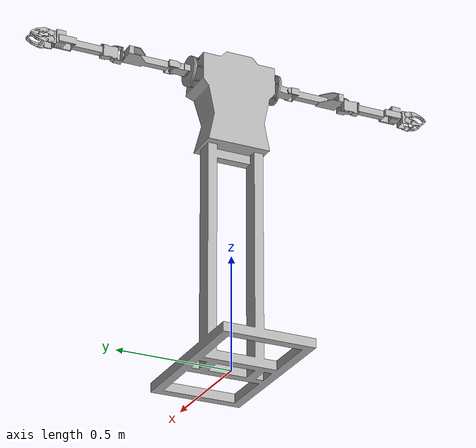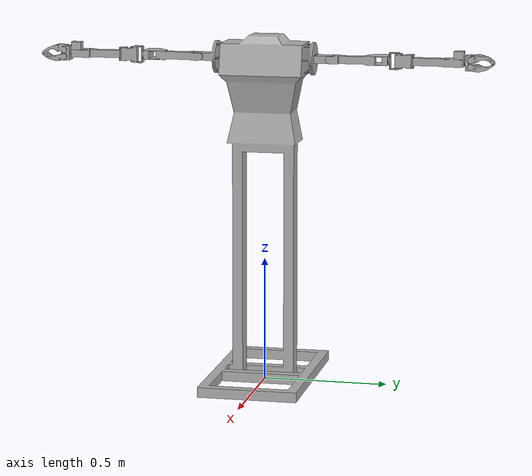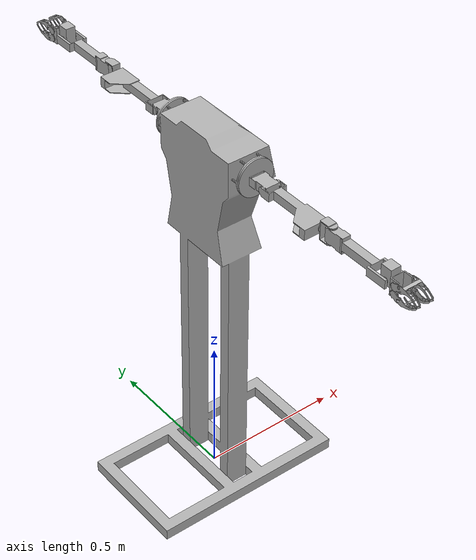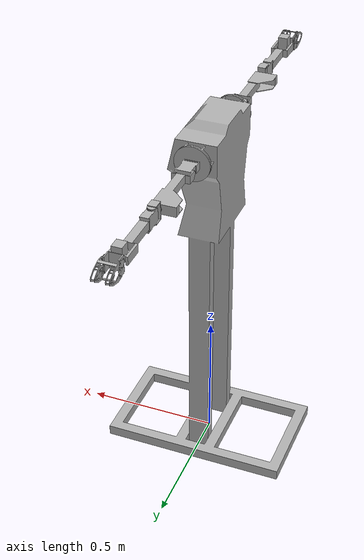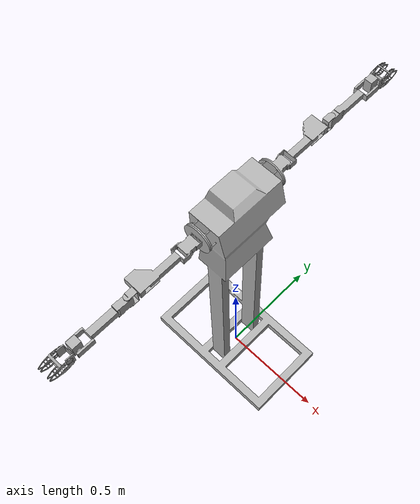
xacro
<?xml version="1.0" ?>
<robot name="Robot_v4" xmlns:xacro="http://www.ros.org/wiki/xacro">

<xacro:include filename="$(find Robot_v4_description)/urdf/materials.xacro" />
<xacro:include filename="$(find Robot_v4_description)/urdf/Robot_v4.trans" />
<xacro:include filename="$(find Robot_v4_description)/urdf/Robot_v4.gazebo" />
<link name="base_link">
  <inertial>
    <origin xyz="0.00017793668988113744 5.533452281433415e-18 0.8689085940658481" rpy="0 0 0"/>
    <mass value="224.71501051023168"/>
    <inertia ixx="55.39019" iyy="55.047659" izz="4.206946" ixy="0.0" iyz="0.0" ixz="-0.066429"/>
  </inertial>
  <visual>
    <origin xyz="0 0 0" rpy="0 0 0"/>
    <geometry>
      <mesh filename="package://Robot_v4_description/meshes/base_link.stl" scale="0.001 0.001 0.001"/>
    </geometry>
    <material name="silver"/>
  </visual>
  <collision>
    <origin xyz="0 0 0" rpy="0 0 0"/>
    <geometry>
      <mesh filename="package://Robot_v4_description/meshes/base_link.stl" scale="0.001 0.001 0.001"/>
    </geometry>
  </collision>
</link>

<link name="left_shoulder_1">
  <inertial>
    <origin xyz="-3.9898639947466563e-17 0.02733088208948492 2.220446049250313e-16" rpy="0 0 0"/>
    <mass value="1.4666981122291527"/>
    <inertia ixx="0.001727" iyy="0.001578" izz="0.00186" ixy="0.0" iyz="0.0" ixz="0.0"/>
  </inertial>
  <visual>
    <origin xyz="0.0015 -0.1965 -1.317" rpy="0 0 0"/>
    <geometry>
      <mesh filename="package://Robot_v4_description/meshes/left_shoulder_1.stl" scale="0.001 0.001 0.001"/>
    </geometry>
    <material name="silver"/>
  </visual>
  <collision>
    <origin xyz="0.0015 -0.1965 -1.317" rpy="0 0 0"/>
    <geometry>
      <mesh filename="package://Robot_v4_description/meshes/left_shoulder_1.stl" scale="0.001 0.001 0.001"/>
    </geometry>
  </collision>
</link>

<link name="left_upper_arm_1">
  <inertial>
    <origin xyz="-0.008260426712845945 0.14307055921586953 2.220446049250313e-16" rpy="0 0 0"/>
    <mass value="1.9288762922196252"/>
    <inertia ixx="0.008968" iyy="0.001022" izz="0.009575" ixy="0.001101" iyz="0.0" ixz="0.0"/>
  </inertial>
  <visual>
    <origin xyz="0.0015 -0.2645 -1.317" rpy="0 0 0"/>
    <geometry>
      <mesh filename="package://Robot_v4_description/meshes/left_upper_arm_1.stl" scale="0.001 0.001 0.001"/>
    </geometry>
    <material name="silver"/>
  </visual>
  <collision>
    <origin xyz="0.0015 -0.2645 -1.317" rpy="0 0 0"/>
    <geometry>
      <mesh filename="package://Robot_v4_description/meshes/left_upper_arm_1.stl" scale="0.001 0.001 0.001"/>
    </geometry>
  </collision>
</link>

<link name="left_elbow_1">
  <inertial>
    <origin xyz="9.065469729063746e-14 0.017967251502734316 2.220446049250313e-16" rpy="0 0 0"/>
    <mass value="0.1439040422196271"/>
    <inertia ixx="0.000129" iyy="0.000104" izz="4.5e-05" ixy="0.0" iyz="-0.0" ixz="0.0"/>
  </inertial>
  <visual>
    <origin xyz="0.0015 -0.4995 -1.317" rpy="0 0 0"/>
    <geometry>
      <mesh filename="package://Robot_v4_description/meshes/left_elbow_1.stl" scale="0.001 0.001 0.001"/>
    </geometry>
    <material name="silver"/>
  </visual>
  <collision>
    <origin xyz="0.0015 -0.4995 -1.317" rpy="0 0 0"/>
    <geometry>
      <mesh filename="package://Robot_v4_description/meshes/left_elbow_1.stl" scale="0.001 0.001 0.001"/>
    </geometry>
  </collision>
</link>

<link name="left_forearm_1">
  <inertial>
    <origin xyz="-7.892991815694472e-17 0.09502500346990628 0.0" rpy="0 0 0"/>
    <mass value="2.0132130797778944"/>
    <inertia ixx="0.0117" iyy="0.000662" izz="0.0118" ixy="0.0" iyz="0.0" ixz="-0.0"/>
  </inertial>
  <visual>
    <origin xyz="0.0015 -0.5385 -1.317" rpy="0 0 0"/>
    <geometry>
      <mesh filename="package://Robot_v4_description/meshes/left_forearm_1.stl" scale="0.001 0.001 0.001"/>
    </geometry>
    <material name="silver"/>
  </visual>
  <collision>
    <origin xyz="0.0015 -0.5385 -1.317" rpy="0 0 0"/>
    <geometry>
      <mesh filename="package://Robot_v4_description/meshes/left_forearm_1.stl" scale="0.001 0.001 0.001"/>
    </geometry>
  </collision>
</link>

<link name="left_wrist_1">
  <inertial>
    <origin xyz="-5.578003337003423e-15 0.00022630011389290772 0.014473720665364898" rpy="0 0 0"/>
    <mass value="0.7029015023306802"/>
    <inertia ixx="0.000304" iyy="0.00029" izz="0.000174" ixy="0.0" iyz="2e-06" ixz="-0.0"/>
  </inertial>
  <visual>
    <origin xyz="0.0015 -0.7785 -1.317" rpy="0 0 0"/>
    <geometry>
      <mesh filename="package://Robot_v4_description/meshes/left_wrist_1.stl" scale="0.001 0.001 0.001"/>
    </geometry>
    <material name="silver"/>
  </visual>
  <collision>
    <origin xyz="0.0015 -0.7785 -1.317" rpy="0 0 0"/>
    <geometry>
      <mesh filename="package://Robot_v4_description/meshes/left_wrist_1.stl" scale="0.001 0.001 0.001"/>
    </geometry>
  </collision>
</link>

<link name="left_hand_1">
  <inertial>
    <origin xyz="4.231641079210924e-14 0.01581253510869285 -6.661338147750939e-16" rpy="0 0 0"/>
    <mass value="0.1824609520976122"/>
    <inertia ixx="7e-05" iyy="0.000135" izz="0.000108" ixy="0.0" iyz="0.0" ixz="-0.0"/>
  </inertial>
  <visual>
    <origin xyz="0.0015 -0.8015 -1.317" rpy="0 0 0"/>
    <geometry>
      <mesh filename="package://Robot_v4_description/meshes/left_hand_1.stl" scale="0.001 0.001 0.001"/>
    </geometry>
    <material name="silver"/>
  </visual>
  <collision>
    <origin xyz="0.0015 -0.8015 -1.317" rpy="0 0 0"/>
    <geometry>
      <mesh filename="package://Robot_v4_description/meshes/left_hand_1.stl" scale="0.001 0.001 0.001"/>
    </geometry>
  </collision>
</link>

<link name="left_upper_clamp_1">
  <inertial>
    <origin xyz="-4.2934406030425976e-17 0.03139159595926877 0.0037177697824435363" rpy="0 0 0"/>
    <mass value="0.07927921862621877"/>
    <inertia ixx="6.1e-05" iyy="6e-05" izz="0.000112" ixy="0.0" iyz="-0.0" ixz="0.0"/>
  </inertial>
  <visual>
    <origin xyz="0.0015 -0.8265 -1.331" rpy="0 0 0"/>
    <geometry>
      <mesh filename="package://Robot_v4_description/meshes/left_upper_clamp_1.stl" scale="0.001 0.001 0.001"/>
    </geometry>
    <material name="silver"/>
  </visual>
  <collision>
    <origin xyz="0.0015 -0.8265 -1.331" rpy="0 0 0"/>
    <geometry>
      <mesh filename="package://Robot_v4_description/meshes/left_upper_clamp_1.stl" scale="0.001 0.001 0.001"/>
    </geometry>
  </collision>
</link>

<link name="left_lower_clamp_1">
  <inertial>
    <origin xyz="-9.627715291671279e-17 0.030933117132007526 -0.004855790878325772" rpy="0 0 0"/>
    <mass value="0.07734674619028087"/>
    <inertia ixx="5.9e-05" iyy="5.8e-05" izz="0.000109" ixy="-0.0" iyz="2e-06" ixz="-0.0"/>
  </inertial>
  <visual>
    <origin xyz="0.0015 -0.8265 -1.303" rpy="0 0 0"/>
    <geometry>
      <mesh filename="package://Robot_v4_description/meshes/left_lower_clamp_1.stl" scale="0.001 0.001 0.001"/>
    </geometry>
    <material name="silver"/>
  </visual>
  <collision>
    <origin xyz="0.0015 -0.8265 -1.303" rpy="0 0 0"/>
    <geometry>
      <mesh filename="package://Robot_v4_description/meshes/left_lower_clamp_1.stl" scale="0.001 0.001 0.001"/>
    </geometry>
  </collision>
</link>

<link name="right_shoulder_1">
  <inertial>
    <origin xyz="-3.968179951296946e-17 -0.02733088208948492 2.220446049250313e-16" rpy="0 0 0"/>
    <mass value="1.466698112229153"/>
    <inertia ixx="0.001727" iyy="0.001578" izz="0.00186" ixy="-0.0" iyz="0.0" ixz="-0.0"/>
  </inertial>
  <visual>
    <origin xyz="0.0015 0.1965 -1.317" rpy="0 0 0"/>
    <geometry>
      <mesh filename="package://Robot_v4_description/meshes/right_shoulder_1.stl" scale="0.001 0.001 0.001"/>
    </geometry>
    <material name="silver"/>
  </visual>
  <collision>
    <origin xyz="0.0015 0.1965 -1.317" rpy="0 0 0"/>
    <geometry>
      <mesh filename="package://Robot_v4_description/meshes/right_shoulder_1.stl" scale="0.001 0.001 0.001"/>
    </geometry>
  </collision>
</link>

<link name="right_upper_arm_1">
  <inertial>
    <origin xyz="-0.008260426712846007 -0.14307055921586959 2.220446049250313e-16" rpy="0 0 0"/>
    <mass value="1.928876292219625"/>
    <inertia ixx="0.008968" iyy="0.001022" izz="0.009575" ixy="-0.001101" iyz="-0.0" ixz="-0.0"/>
  </inertial>
  <visual>
    <origin xyz="0.0015 0.2645 -1.317" rpy="0 0 0"/>
    <geometry>
      <mesh filename="package://Robot_v4_description/meshes/right_upper_arm_1.stl" scale="0.001 0.001 0.001"/>
    </geometry>
    <material name="silver"/>
  </visual>
  <collision>
    <origin xyz="0.0015 0.2645 -1.317" rpy="0 0 0"/>
    <geometry>
      <mesh filename="package://Robot_v4_description/meshes/right_upper_arm_1.stl" scale="0.001 0.001 0.001"/>
    </geometry>
  </collision>
</link>

<link name="right_elbow_1">
  <inertial>
    <origin xyz="9.064125318369864e-14 -0.017967251502734316 2.220446049250313e-16" rpy="0 0 0"/>
    <mass value="0.14390404221962716"/>
    <inertia ixx="0.000129" iyy="0.000104" izz="4.5e-05" ixy="-0.0" iyz="0.0" ixz="0.0"/>
  </inertial>
  <visual>
    <origin xyz="0.0015 0.4995 -1.317" rpy="0 0 0"/>
    <geometry>
      <mesh filename="package://Robot_v4_description/meshes/right_elbow_1.stl" scale="0.001 0.001 0.001"/>
    </geometry>
    <material name="silver"/>
  </visual>
  <collision>
    <origin xyz="0.0015 0.4995 -1.317" rpy="0 0 0"/>
    <geometry>
      <mesh filename="package://Robot_v4_description/meshes/right_elbow_1.stl" scale="0.001 0.001 0.001"/>
    </geometry>
  </collision>
</link>

<link name="right_forearm_1">
  <inertial>
    <origin xyz="-8.348356728138384e-17 -0.09502500346990628 0.0" rpy="0 0 0"/>
    <mass value="2.013213079777894"/>
    <inertia ixx="0.0117" iyy="0.000662" izz="0.0118" ixy="0.0" iyz="0.0" ixz="0.0"/>
  </inertial>
  <visual>
    <origin xyz="0.0015 0.5385 -1.317" rpy="0 0 0"/>
    <geometry>
      <mesh filename="package://Robot_v4_description/meshes/right_forearm_1.stl" scale="0.001 0.001 0.001"/>
    </geometry>
    <material name="silver"/>
  </visual>
  <collision>
    <origin xyz="0.0015 0.5385 -1.317" rpy="0 0 0"/>
    <geometry>
      <mesh filename="package://Robot_v4_description/meshes/right_forearm_1.stl" scale="0.001 0.001 0.001"/>
    </geometry>
  </collision>
</link>

<link name="right_wrist_1">
  <inertial>
    <origin xyz="-5.578003337003423e-15 -0.00022630011389290772 0.014473720665364898" rpy="0 0 0"/>
    <mass value="0.7029015023306802"/>
    <inertia ixx="0.000304" iyy="0.00029" izz="0.000174" ixy="-0.0" iyz="-2e-06" ixz="-0.0"/>
  </inertial>
  <visual>
    <origin xyz="0.0015 0.7785 -1.317" rpy="0 0 0"/>
    <geometry>
      <mesh filename="package://Robot_v4_description/meshes/right_wrist_1.stl" scale="0.001 0.001 0.001"/>
    </geometry>
    <material name="silver"/>
  </visual>
  <collision>
    <origin xyz="0.0015 0.7785 -1.317" rpy="0 0 0"/>
    <geometry>
      <mesh filename="package://Robot_v4_description/meshes/right_wrist_1.stl" scale="0.001 0.001 0.001"/>
    </geometry>
  </collision>
</link>

<link name="right_hand_1">
  <inertial>
    <origin xyz="4.231641079210924e-14 -0.01581253510869285 -6.661338147750939e-16" rpy="0 0 0"/>
    <mass value="0.1824609520976122"/>
    <inertia ixx="7e-05" iyy="0.000135" izz="0.000108" ixy="-0.0" iyz="-0.0" ixz="-0.0"/>
  </inertial>
  <visual>
    <origin xyz="0.0015 0.8015 -1.317" rpy="0 0 0"/>
    <geometry>
      <mesh filename="package://Robot_v4_description/meshes/right_hand_1.stl" scale="0.001 0.001 0.001"/>
    </geometry>
    <material name="silver"/>
  </visual>
  <collision>
    <origin xyz="0.0015 0.8015 -1.317" rpy="0 0 0"/>
    <geometry>
      <mesh filename="package://Robot_v4_description/meshes/right_hand_1.stl" scale="0.001 0.001 0.001"/>
    </geometry>
  </collision>
</link>

<link name="right_upper_clamp_1">
  <inertial>
    <origin xyz="-5.702903427273753e-17 -0.031391595959269214 0.0037177697824435363" rpy="0 0 0"/>
    <mass value="0.07927921862621765"/>
    <inertia ixx="6.1e-05" iyy="6e-05" izz="0.000112" ixy="0.0" iyz="0.0" ixz="0.0"/>
  </inertial>
  <visual>
    <origin xyz="0.0015 0.8265 -1.331" rpy="0 0 0"/>
    <geometry>
      <mesh filename="package://Robot_v4_description/meshes/right_upper_clamp_1.stl" scale="0.001 0.001 0.001"/>
    </geometry>
    <material name="silver"/>
  </visual>
  <collision>
    <origin xyz="0.0015 0.8265 -1.331" rpy="0 0 0"/>
    <geometry>
      <mesh filename="package://Robot_v4_description/meshes/right_upper_clamp_1.stl" scale="0.001 0.001 0.001"/>
    </geometry>
  </collision>
</link>

<link name="right_lower_clamp_1">
  <inertial>
    <origin xyz="-5.659535340374333e-17 -0.030933117132007526 -0.004855790878325772" rpy="0 0 0"/>
    <mass value="0.07734674619028098"/>
    <inertia ixx="5.9e-05" iyy="5.8e-05" izz="0.000109" ixy="0.0" iyz="-2e-06" ixz="-0.0"/>
  </inertial>
  <visual>
    <origin xyz="0.0015 0.8265 -1.303" rpy="0 0 0"/>
    <geometry>
      <mesh filename="package://Robot_v4_description/meshes/right_lower_clamp_1.stl" scale="0.001 0.001 0.001"/>
    </geometry>
    <material name="silver"/>
  </visual>
  <collision>
    <origin xyz="0.0015 0.8265 -1.303" rpy="0 0 0"/>
    <geometry>
      <mesh filename="package://Robot_v4_description/meshes/right_lower_clamp_1.stl" scale="0.001 0.001 0.001"/>
    </geometry>
  </collision>
</link>

<joint name="LJ1" type="continuous">
  <origin xyz="-0.0015 0.1965 1.317" rpy="0 0 0"/>
  <parent link="base_link"/>
  <child link="left_shoulder_1"/>
  <axis xyz="-0.0 1.0 0.0"/>
</joint>

<joint name="LJ2" type="continuous">
  <origin xyz="0.0 0.068 0.0" rpy="0 0 0"/>
  <parent link="left_shoulder_1"/>
  <child link="left_upper_arm_1"/>
  <axis xyz="-1.0 -0.0 -0.0"/>
</joint>

<joint name="LJ3" type="continuous">
  <origin xyz="0.0 0.235 0.0" rpy="0 0 0"/>
  <parent link="left_upper_arm_1"/>
  <child link="left_elbow_1"/>
  <axis xyz="-0.0 1.0 0.0"/>
</joint>

<joint name="LJ4" type="continuous">
  <origin xyz="0.0 0.039 0.0" rpy="0 0 0"/>
  <parent link="left_elbow_1"/>
  <child link="left_forearm_1"/>
  <axis xyz="0.0 0.0 -1.0"/>
</joint>

<joint name="LJ5" type="continuous">
  <origin xyz="0.0 0.24 0.0" rpy="0 0 0"/>
  <parent link="left_forearm_1"/>
  <child link="left_wrist_1"/>
  <axis xyz="-1.0 0.0 0.0"/>
</joint>

<joint name="LJ6" type="continuous">
  <origin xyz="0.0 0.023 0.0" rpy="0 0 0"/>
  <parent link="left_wrist_1"/>
  <child link="left_hand_1"/>
  <axis xyz="0.0 1.0 0.0"/>
</joint>

<joint name="LJ7" type="continuous">
  <origin xyz="0.0 0.025 0.014" rpy="0 0 0"/>
  <parent link="left_hand_1"/>
  <child link="left_upper_clamp_1"/>
  <axis xyz="-1.0 0.0 0.0"/>
</joint>

<joint name="LJ8" type="continuous">
  <origin xyz="0.0 0.025 -0.014" rpy="0 0 0"/>
  <parent link="left_hand_1"/>
  <child link="left_lower_clamp_1"/>
  <axis xyz="-1.0 0.0 0.0"/>
</joint>

<joint name="RJ1" type="continuous">
  <origin xyz="-0.0015 -0.1965 1.317" rpy="0 0 0"/>
  <parent link="base_link"/>
  <child link="right_shoulder_1"/>
  <axis xyz="0.0 -1.0 0.0"/>
</joint>

<joint name="RJ2" type="continuous">
  <origin xyz="0.0 -0.068 0.0" rpy="0 0 0"/>
  <parent link="right_shoulder_1"/>
  <child link="right_upper_arm_1"/>
  <axis xyz="1.0 -0.0 0.0"/>
</joint>

<joint name="RJ3" type="continuous">
  <origin xyz="0.0 -0.235 0.0" rpy="0 0 0"/>
  <parent link="right_upper_arm_1"/>
  <child link="right_elbow_1"/>
  <axis xyz="-0.0 -1.0 0.0"/>
</joint>

<joint name="RJ4" type="continuous">
  <origin xyz="0.0 -0.039 0.0" rpy="0 0 0"/>
  <parent link="right_elbow_1"/>
  <child link="right_forearm_1"/>
  <axis xyz="0.0 -0.0 -1.0"/>
</joint>

<joint name="RJ5" type="continuous">
  <origin xyz="0.0 -0.24 0.0" rpy="0 0 0"/>
  <parent link="right_forearm_1"/>
  <child link="right_wrist_1"/>
  <axis xyz="1.0 0.0 0.0"/>
</joint>

<joint name="RJ6" type="continuous">
  <origin xyz="0.0 -0.023 0.0" rpy="0 0 0"/>
  <parent link="right_wrist_1"/>
  <child link="right_hand_1"/>
  <axis xyz="0.0 -1.0 0.0"/>
</joint>

<joint name="RJ7" type="continuous">
  <origin xyz="0.0 -0.025 0.014" rpy="0 0 0"/>
  <parent link="right_hand_1"/>
  <child link="right_upper_clamp_1"/>
  <axis xyz="1.0 0.0 0.0"/>
</joint>

<joint name="RJ8" type="continuous">
  <origin xyz="0.0 -0.025 -0.014" rpy="0 0 0"/>
  <parent link="right_hand_1"/>
  <child link="right_lower_clamp_1"/>
  <axis xyz="1.0 0.0 0.0"/>
</joint>

</robot>

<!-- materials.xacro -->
<robot name="Robot_v4" xmlns:xacro="http://www.ros.org/wiki/xacro" >

<material name="silver">
  <color rgba="0.700 0.700 0.700 1.000"/>
</material>

</robot>

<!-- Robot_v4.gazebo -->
<robot name="Robot_v4" xmlns:xacro="http://www.ros.org/wiki/xacro" >

<xacro:property name="body_color" value="Gazebo/Silver" />

<gazebo>
  <plugin name="control" filename="libgazebo_ros_control.so"/>
</gazebo>
<gazebo reference="base_link">
  <material>${body_color}</material>
  <mu1>0.2</mu1>
  <mu2>0.2</mu2>
  <selfCollide>true</selfCollide>
  <gravity>true</gravity>
</gazebo>

<gazebo reference="left_shoulder_1">
  <material>${body_color}</material>
  <mu1>0.2</mu1>
  <mu2>0.2</mu2>
  <selfCollide>true</selfCollide>
</gazebo>

<gazebo reference="left_upper_arm_1">
  <material>${body_color}</material>
  <mu1>0.2</mu1>
  <mu2>0.2</mu2>
  <selfCollide>true</selfCollide>
</gazebo>

<gazebo reference="left_elbow_1">
  <material>${body_color}</material>
  <mu1>0.2</mu1>
  <mu2>0.2</mu2>
  <selfCollide>true</selfCollide>
</gazebo>

<gazebo reference="left_forearm_1">
  <material>${body_color}</material>
  <mu1>0.2</mu1>
  <mu2>0.2</mu2>
  <selfCollide>true</selfCollide>
</gazebo>

<gazebo reference="left_wrist_1">
  <material>${body_color}</material>
  <mu1>0.2</mu1>
  <mu2>0.2</mu2>
  <selfCollide>true</selfCollide>
</gazebo>

<gazebo reference="left_hand_1">
  <material>${body_color}</material>
  <mu1>0.2</mu1>
  <mu2>0.2</mu2>
  <selfCollide>true</selfCollide>
</gazebo>

<gazebo reference="left_upper_clamp_1">
  <material>${body_color}</material>
  <mu1>0.2</mu1>
  <mu2>0.2</mu2>
  <selfCollide>true</selfCollide>
</gazebo>

<gazebo reference="left_lower_clamp_1">
  <material>${body_color}</material>
  <mu1>0.2</mu1>
  <mu2>0.2</mu2>
  <selfCollide>true</selfCollide>
</gazebo>

<gazebo reference="right_shoulder_1">
  <material>${body_color}</material>
  <mu1>0.2</mu1>
  <mu2>0.2</mu2>
  <selfCollide>true</selfCollide>
</gazebo>

<gazebo reference="right_upper_arm_1">
  <material>${body_color}</material>
  <mu1>0.2</mu1>
  <mu2>0.2</mu2>
  <selfCollide>true</selfCollide>
</gazebo>

<gazebo reference="right_elbow_1">
  <material>${body_color}</material>
  <mu1>0.2</mu1>
  <mu2>0.2</mu2>
  <selfCollide>true</selfCollide>
</gazebo>

<gazebo reference="right_forearm_1">
  <material>${body_color}</material>
  <mu1>0.2</mu1>
  <mu2>0.2</mu2>
  <selfCollide>true</selfCollide>
</gazebo>

<gazebo reference="right_wrist_1">
  <material>${body_color}</material>
  <mu1>0.2</mu1>
  <mu2>0.2</mu2>
  <selfCollide>true</selfCollide>
</gazebo>

<gazebo reference="right_hand_1">
  <material>${body_color}</material>
  <mu1>0.2</mu1>
  <mu2>0.2</mu2>
  <selfCollide>true</selfCollide>
</gazebo>

<gazebo reference="right_upper_clamp_1">
  <material>${body_color}</material>
  <mu1>0.2</mu1>
  <mu2>0.2</mu2>
  <selfCollide>true</selfCollide>
</gazebo>

<gazebo reference="right_lower_clamp_1">
  <material>${body_color}</material>
  <mu1>0.2</mu1>
  <mu2>0.2</mu2>
  <selfCollide>true</selfCollide>
</gazebo>

</robot>
